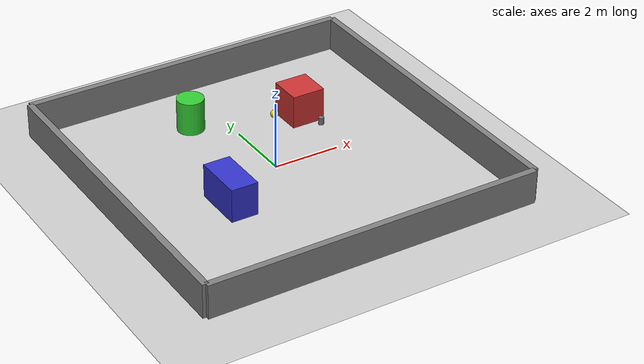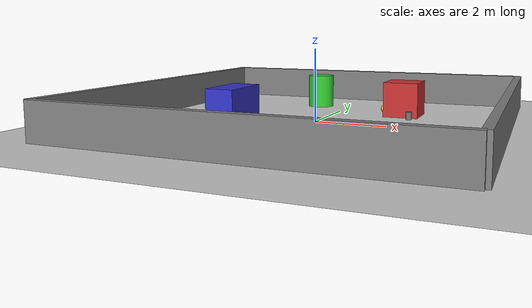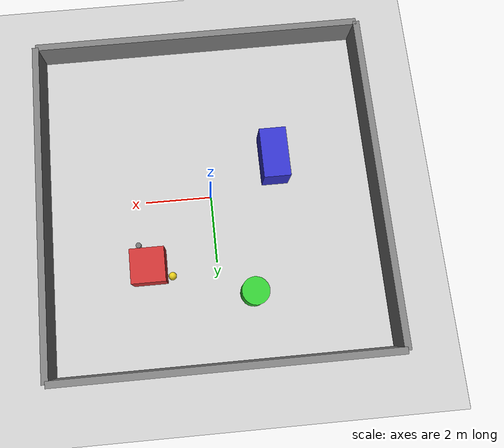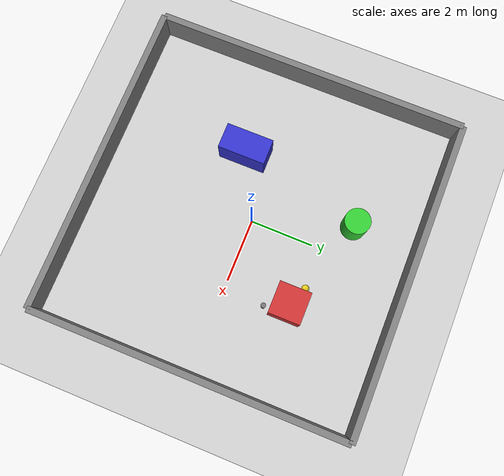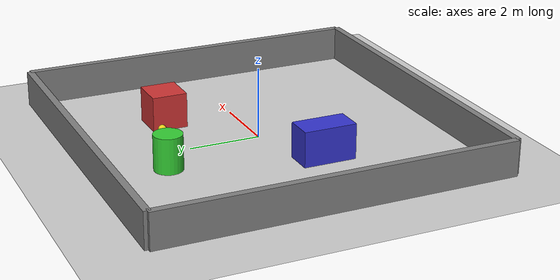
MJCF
<mujoco model="nav_world">

  <visual>
    <headlight diffuse="0.8 0.8 0.8" ambient="0.3 0.3 0.3" specular="0.2 0.2 0.2"/>
    <global azimuth="120" elevation="-20"/>
  </visual>

  <asset>
    <texture type="skybox" builtin="gradient" rgb1="0.3 0.5 0.7" rgb2="0 0 0"
             width="512" height="3072"/>
    <texture type="2d" name="groundplane" builtin="checker" mark="edge"
             rgb1="0.75 0.75 0.75" rgb2="0.85 0.85 0.85" markrgb="0.8 0.8 0.8"
             width="300" height="300"/>
    <material name="groundplane" texture="groundplane" texuniform="true" texrepeat="5 5"/>
  </asset>

  <worldbody>
    <light pos="0 0 10" dir="-0.5 0.1 -0.9" directional="true" castshadow="false"
           diffuse="0.8 0.8 0.8" specular="0.2 0.2 0.2"/>

    <!-- Ground plane; friction high enough for wheel traction (Gazebo used mu=100) -->
    <geom name="ground" type="plane" size="50 50 0.1" material="groundplane"
          friction="1.5 0.005 0.0001"/>

    <!-- Walls (10 x 0.2 x 1 m full size -> half-extents 5 0.1 0.5) -->
    <geom name="wall_north" type="box" size="5 0.1 0.5" pos="0 5 0.5"  rgba="0.5 0.5 0.5 1"/>
    <geom name="wall_south" type="box" size="5 0.1 0.5" pos="0 -5 0.5" rgba="0.5 0.5 0.5 1"/>
    <geom name="wall_east"  type="box" size="0.1 5 0.5" pos="5 0 0.5"  rgba="0.5 0.5 0.5 1"/>
    <geom name="wall_west"  type="box" size="0.1 5 0.5" pos="-5 0 0.5" rgba="0.5 0.5 0.5 1"/>

    <!-- Obstacles -->
    <geom name="box1" type="box" size="0.5 0.5 0.5"   pos="2 2 0.5"   rgba="0.8 0.2 0.2 1"/>
    <geom name="box2" type="box" size="0.4 0.75 0.5"  pos="-2 -1 0.5" rgba="0.2 0.2 0.8 1"/>
    <geom name="cylinder1" type="cylinder" size="0.4 0.5" pos="-1 3 0.5" rgba="0.2 0.8 0.2 1"/>

    <!-- Target-zone dressing beside box1: makes the PoC arrival frame scene-specific.
         Both sit clear of the red_box waypoint (0.23 0.23) and its sightline to box1. -->
    <geom name="prop_yellow_ball" type="sphere" size="0.12" pos="1.35 2.3 0.12" rgba="0.9 0.8 0.1 1"/>
    <geom name="prop_grey_puck" type="cylinder" size="0.08 0.11" pos="2.3 1.3 0.11" rgba="0.45 0.45 0.45 1"/>
  </worldbody>

</mujoco>
